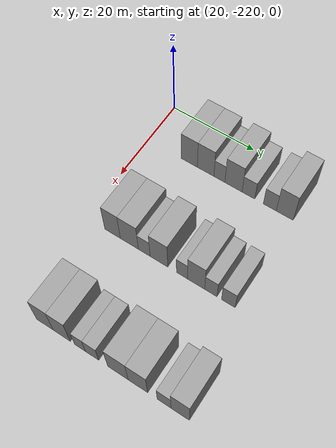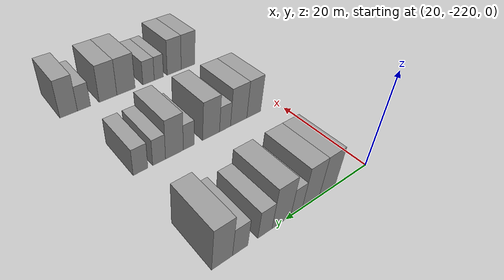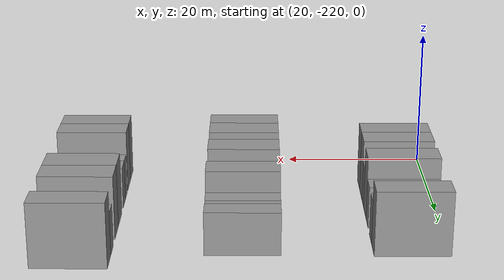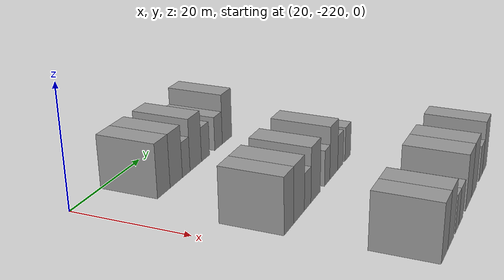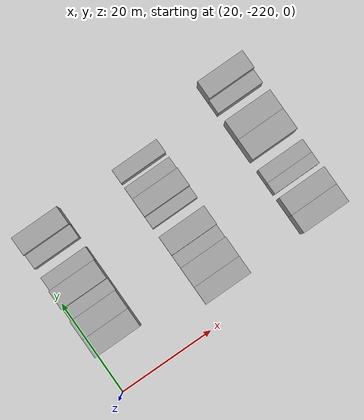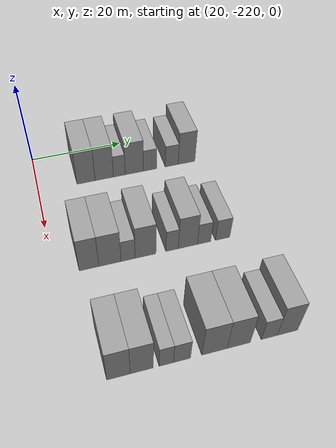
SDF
<sdf version="1.6">
 <world name="default">
  <model name="building_9">
   <static>1</static>
   <pose>25.0000 -209.7073 0 0.000000 0.000000 0.000000</pose>
   <link name="link">
    <pose>0 0 4.50 0 0 0</pose>
    <collision name="collision"><geometry><box><size>10.0000 3.9717 9.0000</size></box></geometry></collision>
    <visual name="visual">
     <cast_shadows>0</cast_shadows>
     <geometry><box><size>10.0000 3.9717 9.0000</size></box></geometry>
     <material>
      <script>
       <uri>model://grey_wall/materials/scripts</uri>
       <uri>model://grey_wall/materials/textures</uri>
       <name>vrc/grey_wall</name>
      </script>
     </material>
    </visual>
   </link>
  </model>
  <model name="building_10">
   <static>1</static>
   <pose>25.0000 -205.7023 0 0.000000 0.000000 0.000000</pose>
   <link name="link">
    <pose>0 0 4.50 0 0 0</pose>
    <collision name="collision"><geometry><box><size>10.0000 4.0384 9.0000</size></box></geometry></collision>
    <visual name="visual">
     <cast_shadows>0</cast_shadows>
     <geometry><box><size>10.0000 4.0384 9.0000</size></box></geometry>
     <material>
      <script>
       <uri>model://grey_wall/materials/scripts</uri>
       <uri>model://grey_wall/materials/textures</uri>
       <name>vrc/grey_wall</name>
      </script>
     </material>
    </visual>
   </link>
  </model>
  <model name="building_11">
   <static>1</static>
   <pose>25.0000 -202.3700 0 0.000000 0.000000 0.000000</pose>
   <link name="link">
    <pose>0 0 3.00 0 0 0</pose>
    <collision name="collision"><geometry><box><size>10.0000 2.6262 6.0000</size></box></geometry></collision>
    <visual name="visual">
     <cast_shadows>0</cast_shadows>
     <geometry><box><size>10.0000 2.6262 6.0000</size></box></geometry>
     <material>
      <script>
       <uri>model://grey_wall/materials/scripts</uri>
       <uri>model://grey_wall/materials/textures</uri>
       <name>vrc/grey_wall</name>
      </script>
     </material>
    </visual>
   </link>
  </model>
  <model name="building_12">
   <static>1</static>
   <pose>25.0000 -199.0127 0 0.000000 0.000000 0.000000</pose>
   <link name="link">
    <pose>0 0 4.50 0 0 0</pose>
    <collision name="collision"><geometry><box><size>10.0000 4.0882 9.0000</size></box></geometry></collision>
    <visual name="visual">
     <cast_shadows>0</cast_shadows>
     <geometry><box><size>10.0000 4.0882 9.0000</size></box></geometry>
     <material>
      <script>
       <uri>model://grey_wall/materials/scripts</uri>
       <uri>model://grey_wall/materials/textures</uri>
       <name>vrc/grey_wall</name>
      </script>
     </material>
    </visual>
   </link>
  </model>
  <model name="building_13">
   <static>1</static>
   <pose>25.0000 -195.4758 0 0.000000 0.000000 0.000000</pose>
   <link name="link">
    <pose>0 0 3.00 0 0 0</pose>
    <collision name="collision"><geometry><box><size>10.0000 2.9857 6.0000</size></box></geometry></collision>
    <visual name="visual">
     <cast_shadows>0</cast_shadows>
     <geometry><box><size>10.0000 2.9857 6.0000</size></box></geometry>
     <material>
      <script>
       <uri>model://grey_wall/materials/scripts</uri>
       <uri>model://grey_wall/materials/textures</uri>
       <name>vrc/grey_wall</name>
      </script>
     </material>
    </visual>
   </link>
  </model>
  <model name="building_14">
   <static>1</static>
   <pose>25.0000 -190.4955 0 0.000000 0.000000 0.000000</pose>
   <link name="link">
    <pose>0 0 3.00 0 0 0</pose>
    <collision name="collision"><geometry><box><size>10.0000 2.9749 6.0000</size></box></geometry></collision>
    <visual name="visual">
     <cast_shadows>0</cast_shadows>
     <geometry><box><size>10.0000 2.9749 6.0000</size></box></geometry>
     <material>
      <script>
       <uri>model://grey_wall/materials/scripts</uri>
       <uri>model://grey_wall/materials/textures</uri>
       <name>vrc/grey_wall</name>
      </script>
     </material>
    </visual>
   </link>
  </model>
  <model name="building_15">
   <static>1</static>
   <pose>25.0000 -187.0728 0 0.000000 0.000000 0.000000</pose>
   <link name="link">
    <pose>0 0 4.50 0 0 0</pose>
    <collision name="collision"><geometry><box><size>10.0000 3.8704 9.0000</size></box></geometry></collision>
    <visual name="visual">
     <cast_shadows>0</cast_shadows>
     <geometry><box><size>10.0000 3.8704 9.0000</size></box></geometry>
     <material>
      <script>
       <uri>model://grey_wall/materials/scripts</uri>
       <uri>model://grey_wall/materials/textures</uri>
       <name>vrc/grey_wall</name>
      </script>
     </material>
    </visual>
   </link>
  </model>
  <model name="building_131">
   <static>1</static>
   <pose>47.0000 -213.4390 0 0.000000 0.000000 0.000000</pose>
   <link name="link">
    <pose>0 0 4.50 0 0 0</pose>
    <collision name="collision"><geometry><box><size>10.0000 3.7558 9.0000</size></box></geometry></collision>
    <visual name="visual">
     <cast_shadows>0</cast_shadows>
     <geometry><box><size>10.0000 3.7558 9.0000</size></box></geometry>
     <material>
      <script>
       <uri>model://grey_wall/materials/scripts</uri>
       <uri>model://grey_wall/materials/textures</uri>
       <name>vrc/grey_wall</name>
      </script>
     </material>
    </visual>
   </link>
  </model>
  <model name="building_132">
   <static>1</static>
   <pose>47.0000 -209.4203 0 0.000000 0.000000 0.000000</pose>
   <link name="link">
    <pose>0 0 4.50 0 0 0</pose>
    <collision name="collision"><geometry><box><size>10.0000 4.2815 9.0000</size></box></geometry></collision>
    <visual name="visual">
     <cast_shadows>0</cast_shadows>
     <geometry><box><size>10.0000 4.2815 9.0000</size></box></geometry>
     <material>
      <script>
       <uri>model://grey_wall/materials/scripts</uri>
       <uri>model://grey_wall/materials/textures</uri>
       <name>vrc/grey_wall</name>
      </script>
     </material>
    </visual>
   </link>
  </model>
  <model name="building_133">
   <static>1</static>
   <pose>47.0000 -205.8886 0 0.000000 0.000000 0.000000</pose>
   <link name="link">
    <pose>0 0 3.00 0 0 0</pose>
    <collision name="collision"><geometry><box><size>10.0000 2.7819 6.0000</size></box></geometry></collision>
    <visual name="visual">
     <cast_shadows>0</cast_shadows>
     <geometry><box><size>10.0000 2.7819 6.0000</size></box></geometry>
     <material>
      <script>
       <uri>model://grey_wall/materials/scripts</uri>
       <uri>model://grey_wall/materials/textures</uri>
       <name>vrc/grey_wall</name>
      </script>
     </material>
    </visual>
   </link>
  </model>
  <model name="building_134">
   <static>1</static>
   <pose>47.0000 -202.4421 0 0.000000 0.000000 0.000000</pose>
   <link name="link">
    <pose>0 0 4.50 0 0 0</pose>
    <collision name="collision"><geometry><box><size>10.0000 4.1111 9.0000</size></box></geometry></collision>
    <visual name="visual">
     <cast_shadows>0</cast_shadows>
     <geometry><box><size>10.0000 4.1111 9.0000</size></box></geometry>
     <material>
      <script>
       <uri>model://grey_wall/materials/scripts</uri>
       <uri>model://grey_wall/materials/textures</uri>
       <name>vrc/grey_wall</name>
      </script>
     </material>
    </visual>
   </link>
  </model>
  <model name="building_135">
   <static>1</static>
   <pose>47.0000 -197.1403 0 0.000000 0.000000 0.000000</pose>
   <link name="link">
    <pose>0 0 3.00 0 0 0</pose>
    <collision name="collision"><geometry><box><size>10.0000 2.4924 6.0000</size></box></geometry></collision>
    <visual name="visual">
     <cast_shadows>0</cast_shadows>
     <geometry><box><size>10.0000 2.4924 6.0000</size></box></geometry>
     <material>
      <script>
       <uri>model://grey_wall/materials/scripts</uri>
       <uri>model://grey_wall/materials/textures</uri>
       <name>vrc/grey_wall</name>
      </script>
     </material>
    </visual>
   </link>
  </model>
  <model name="building_136">
   <static>1</static>
   <pose>47.0000 -193.9476 0 0.000000 0.000000 0.000000</pose>
   <link name="link">
    <pose>0 0 4.50 0 0 0</pose>
    <collision name="collision"><geometry><box><size>10.0000 3.8930 9.0000</size></box></geometry></collision>
    <visual name="visual">
     <cast_shadows>0</cast_shadows>
     <geometry><box><size>10.0000 3.8930 9.0000</size></box></geometry>
     <material>
      <script>
       <uri>model://grey_wall/materials/scripts</uri>
       <uri>model://grey_wall/materials/textures</uri>
       <name>vrc/grey_wall</name>
      </script>
     </material>
    </visual>
   </link>
  </model>
  <model name="building_137">
   <static>1</static>
   <pose>47.0000 -190.6385 0 0.000000 0.000000 0.000000</pose>
   <link name="link">
    <pose>0 0 3.00 0 0 0</pose>
    <collision name="collision"><geometry><box><size>10.0000 2.7252 6.0000</size></box></geometry></collision>
    <visual name="visual">
     <cast_shadows>0</cast_shadows>
     <geometry><box><size>10.0000 2.7252 6.0000</size></box></geometry>
     <material>
      <script>
       <uri>model://grey_wall/materials/scripts</uri>
       <uri>model://grey_wall/materials/textures</uri>
       <name>vrc/grey_wall</name>
      </script>
     </material>
    </visual>
   </link>
  </model>
  <model name="building_138">
   <static>1</static>
   <pose>47.0000 -186.7793 0 0.000000 0.000000 0.000000</pose>
   <link name="link">
    <pose>0 0 3.00 0 0 0</pose>
    <collision name="collision"><geometry><box><size>10.0000 2.9932 6.0000</size></box></geometry></collision>
    <visual name="visual">
     <cast_shadows>0</cast_shadows>
     <geometry><box><size>10.0000 2.9932 6.0000</size></box></geometry>
     <material>
      <script>
       <uri>model://grey_wall/materials/scripts</uri>
       <uri>model://grey_wall/materials/textures</uri>
       <name>vrc/grey_wall</name>
      </script>
     </material>
    </visual>
   </link>
  </model>
  <model name="building_252">
   <static>1</static>
   <pose>69.0000 -212.9599 0 0.000000 0.000000 0.000000</pose>
   <link name="link">
    <pose>0 0 4.50 0 0 0</pose>
    <collision name="collision"><geometry><box><size>10.0000 3.9319 9.0000</size></box></geometry></collision>
    <visual name="visual">
     <cast_shadows>0</cast_shadows>
     <geometry><box><size>10.0000 3.9319 9.0000</size></box></geometry>
     <material>
      <script>
       <uri>model://grey_wall/materials/scripts</uri>
       <uri>model://grey_wall/materials/textures</uri>
       <name>vrc/grey_wall</name>
      </script>
     </material>
    </visual>
   </link>
  </model>
  <model name="building_253">
   <static>1</static>
   <pose>69.0000 -209.0469 0 0.000000 0.000000 0.000000</pose>
   <link name="link">
    <pose>0 0 4.50 0 0 0</pose>
    <collision name="collision"><geometry><box><size>10.0000 3.8942 9.0000</size></box></geometry></collision>
    <visual name="visual">
     <cast_shadows>0</cast_shadows>
     <geometry><box><size>10.0000 3.8942 9.0000</size></box></geometry>
     <material>
      <script>
       <uri>model://grey_wall/materials/scripts</uri>
       <uri>model://grey_wall/materials/textures</uri>
       <name>vrc/grey_wall</name>
      </script>
     </material>
    </visual>
   </link>
  </model>
  <model name="building_254">
   <static>1</static>
   <pose>69.0000 -204.8655 0 0.000000 0.000000 0.000000</pose>
   <link name="link">
    <pose>0 0 3.00 0 0 0</pose>
    <collision name="collision"><geometry><box><size>10.0000 2.4684 6.0000</size></box></geometry></collision>
    <visual name="visual">
     <cast_shadows>0</cast_shadows>
     <geometry><box><size>10.0000 2.4684 6.0000</size></box></geometry>
     <material>
      <script>
       <uri>model://grey_wall/materials/scripts</uri>
       <uri>model://grey_wall/materials/textures</uri>
       <name>vrc/grey_wall</name>
      </script>
     </material>
    </visual>
   </link>
  </model>
  <model name="building_255">
   <static>1</static>
   <pose>69.0000 -202.1532 0 0.000000 0.000000 0.000000</pose>
   <link name="link">
    <pose>0 0 3.00 0 0 0</pose>
    <collision name="collision"><geometry><box><size>10.0000 2.9562 6.0000</size></box></geometry></collision>
    <visual name="visual">
     <cast_shadows>0</cast_shadows>
     <geometry><box><size>10.0000 2.9562 6.0000</size></box></geometry>
     <material>
      <script>
       <uri>model://grey_wall/materials/scripts</uri>
       <uri>model://grey_wall/materials/textures</uri>
       <name>vrc/grey_wall</name>
      </script>
     </material>
    </visual>
   </link>
  </model>
  <model name="building_256">
   <static>1</static>
   <pose>69.0000 -196.4255 0 0.000000 0.000000 0.000000</pose>
   <link name="link">
    <pose>0 0 4.50 0 0 0</pose>
    <collision name="collision"><geometry><box><size>10.0000 4.4993 9.0000</size></box></geometry></collision>
    <visual name="visual">
     <cast_shadows>0</cast_shadows>
     <geometry><box><size>10.0000 4.4993 9.0000</size></box></geometry>
     <material>
      <script>
       <uri>model://grey_wall/materials/scripts</uri>
       <uri>model://grey_wall/materials/textures</uri>
       <name>vrc/grey_wall</name>
      </script>
     </material>
    </visual>
   </link>
  </model>
  <model name="building_257">
   <static>1</static>
   <pose>69.0000 -192.0732 0 0.000000 0.000000 0.000000</pose>
   <link name="link">
    <pose>0 0 4.50 0 0 0</pose>
    <collision name="collision"><geometry><box><size>10.0000 4.2054 9.0000</size></box></geometry></collision>
    <visual name="visual">
     <cast_shadows>0</cast_shadows>
     <geometry><box><size>10.0000 4.2054 9.0000</size></box></geometry>
     <material>
      <script>
       <uri>model://grey_wall/materials/scripts</uri>
       <uri>model://grey_wall/materials/textures</uri>
       <name>vrc/grey_wall</name>
      </script>
     </material>
    </visual>
   </link>
  </model>
  <model name="building_258">
   <static>1</static>
   <pose>69.0000 -186.5054 0 0.000000 0.000000 0.000000</pose>
   <link name="link">
    <pose>0 0 3.00 0 0 0</pose>
    <collision name="collision"><geometry><box><size>10.0000 2.9300 6.0000</size></box></geometry></collision>
    <visual name="visual">
     <cast_shadows>0</cast_shadows>
     <geometry><box><size>10.0000 2.9300 6.0000</size></box></geometry>
     <material>
      <script>
       <uri>model://grey_wall/materials/scripts</uri>
       <uri>model://grey_wall/materials/textures</uri>
       <name>vrc/grey_wall</name>
      </script>
     </material>
    </visual>
   </link>
  </model>
  <model name="building_259">
   <static>1</static>
   <pose>69.0000 -183.1318 0 0.000000 0.000000 0.000000</pose>
   <link name="link">
    <pose>0 0 4.50 0 0 0</pose>
    <collision name="collision"><geometry><box><size>10.0000 3.8173 9.0000</size></box></geometry></collision>
    <visual name="visual">
     <cast_shadows>0</cast_shadows>
     <geometry><box><size>10.0000 3.8173 9.0000</size></box></geometry>
     <material>
      <script>
       <uri>model://grey_wall/materials/scripts</uri>
       <uri>model://grey_wall/materials/textures</uri>
       <name>vrc/grey_wall</name>
      </script>
     </material>
    </visual>
   </link>
  </model>
 </world>
</sdf>
